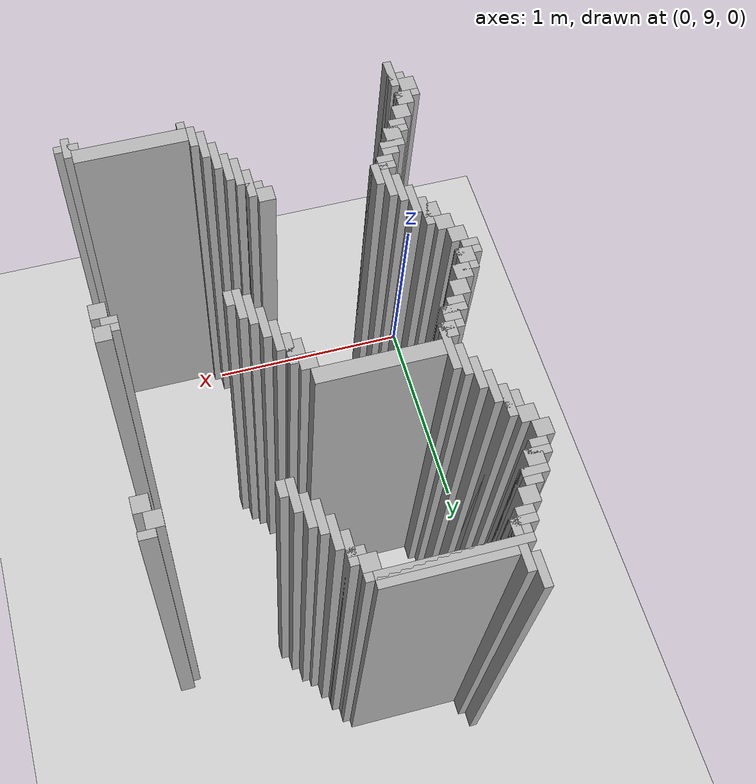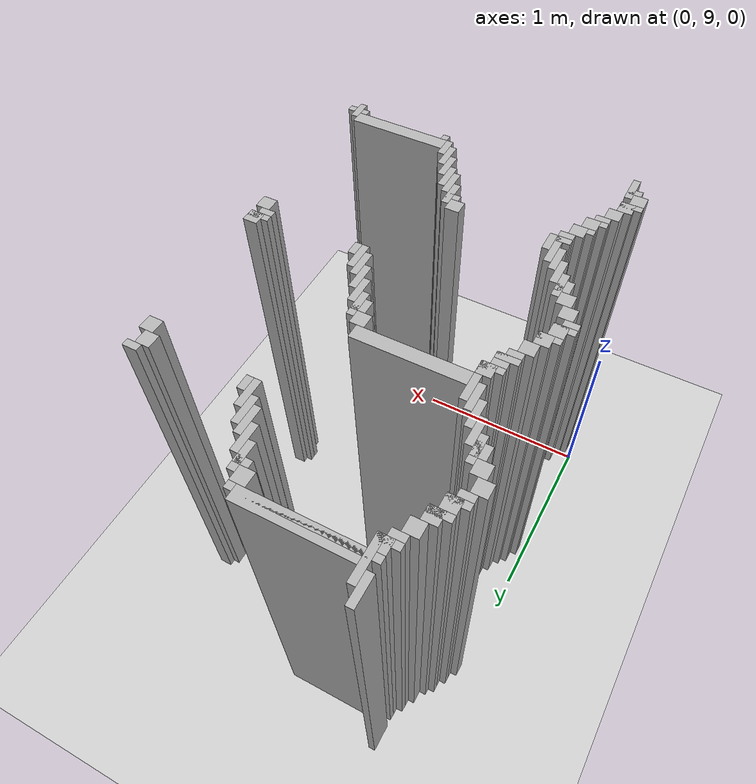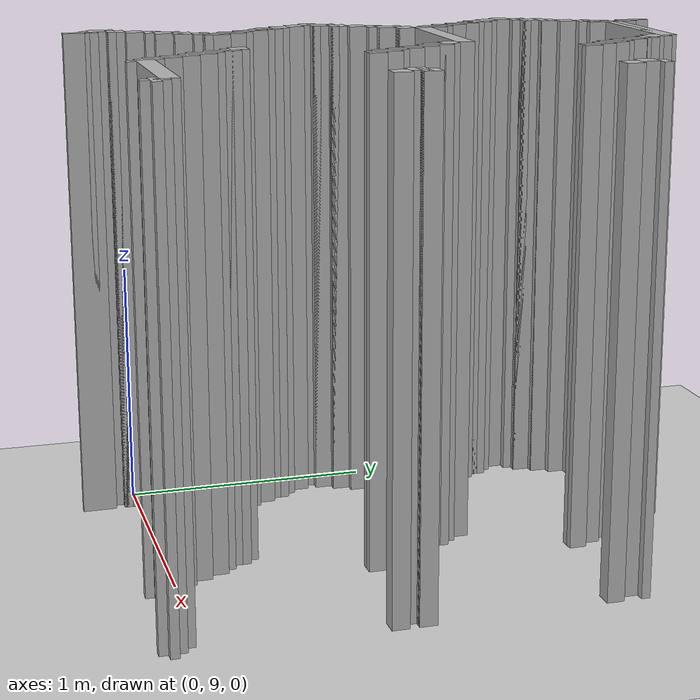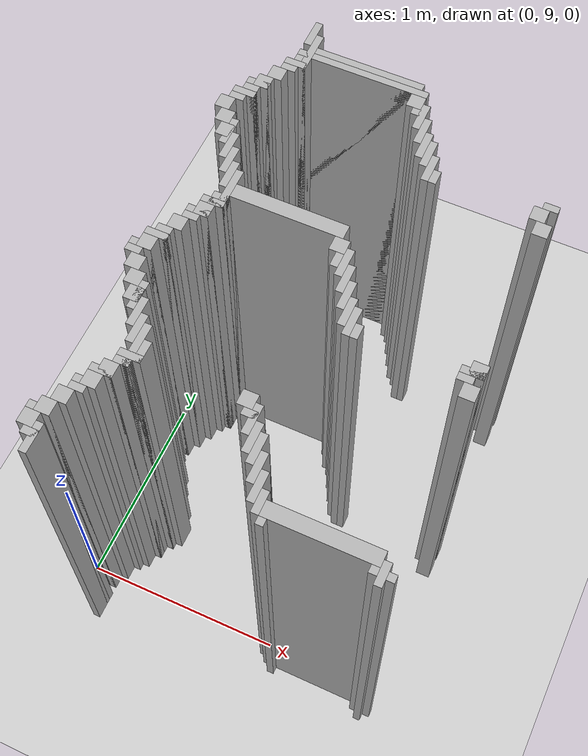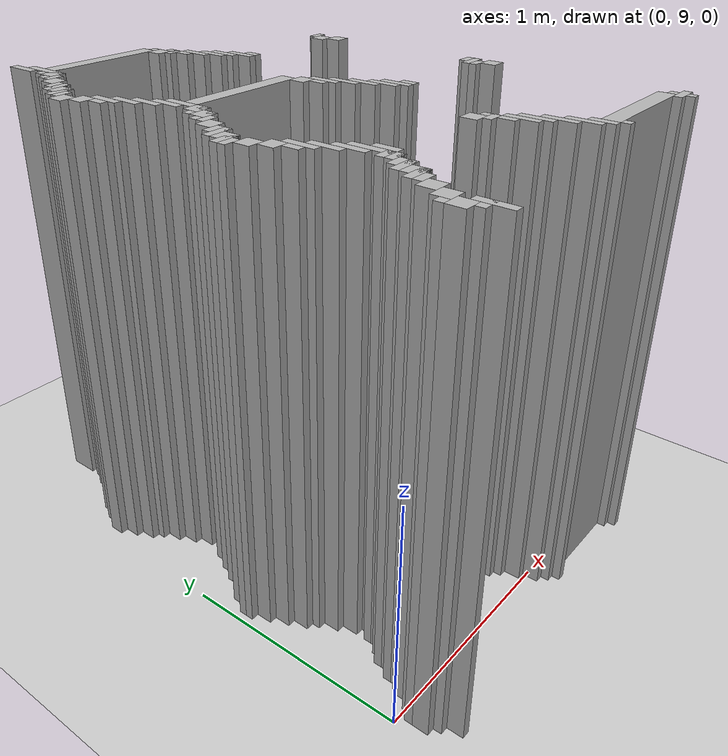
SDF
<sdf version="1.6">
 <world name="slam_world">
  <model name="ground_plane">
   <static>true</static>
   <link name="link">
    <collision name="collision">
     <geometry><plane><normal>0 0 1</normal><size>100 100</size></plane></geometry>
    </collision>
    <visual name="visual">
     <geometry><plane><normal>0 0 1</normal><size>100 100</size></plane></geometry>
     <material>
      <ambient>0.8 0.8 0.8 1</ambient>
      <diffuse>0.8 0.8 0.8 1</diffuse>
      <specular>0.8 0.8 0.8 1</specular>
     </material>
    </visual>
   </link>
  </model>
  <model name="wall_2126">
   <static>true</static>
   <pose>0.2610208816705336 11.1368909512761 1.0 0 0 0</pose>
   <link name="link">
    <collision name="collision">
     <geometry><box><size>0.03480278422273782 0.13921113689095127 2.0</size></box></geometry>
    </collision>
    <visual name="visual">
     <geometry><box><size>0.03480278422273782 0.13921113689095127 2.0</size></box></geometry>
     <material><ambient>0.5 0.5 0.5 1</ambient><diffuse>0.7 0.7 0.7 1</diffuse></material>
    </visual>
   </link>
  </model>
  <model name="wall_2150">
   <static>true</static>
   <pose>0.29582366589327147 11.032482598607888 1.0 0 0 0</pose>
   <link name="link">
    <collision name="collision">
     <geometry><box><size>0.03480278422273782 0.2088167053364269 2.0</size></box></geometry>
    </collision>
    <visual name="visual">
     <geometry><box><size>0.03480278422273782 0.2088167053364269 2.0</size></box></geometry>
     <material><ambient>0.5 0.5 0.5 1</ambient><diffuse>0.7 0.7 0.7 1</diffuse></material>
    </visual>
   </link>
  </model>
  <model name="wall_2174">
   <static>true</static>
   <pose>0.574245939675174 11.032482598607888 1.0 0 0 0</pose>
   <link name="link">
    <collision name="collision">
     <geometry><box><size>0.5220417633410672 0.06960556844547564 2.0</size></box></geometry>
    </collision>
    <visual name="visual">
     <geometry><box><size>0.5220417633410672 0.06960556844547564 2.0</size></box></geometry>
     <material><ambient>0.5 0.5 0.5 1</ambient><diffuse>0.7 0.7 0.7 1</diffuse></material>
    </visual>
   </link>
  </model>
  <model name="wall_2186">
   <static>true</static>
   <pose>0.5568445475638051 11.01508120649652 1.0 0 0 0</pose>
   <link name="link">
    <collision name="collision">
     <geometry><box><size>0.6264501160092807 0.03480278422273782 2.0</size></box></geometry>
    </collision>
    <visual name="visual">
     <geometry><box><size>0.6264501160092807 0.03480278422273782 2.0</size></box></geometry>
     <material><ambient>0.5 0.5 0.5 1</ambient><diffuse>0.7 0.7 0.7 1</diffuse></material>
    </visual>
   </link>
  </model>
  <model name="wall_2197">
   <static>true</static>
   <pose>0.27842227378190254 10.962877030162412 1.0 0 0 0</pose>
   <link name="link">
    <collision name="collision">
     <geometry><box><size>0.06960556844547564 0.06960556844547564 2.0</size></box></geometry>
    </collision>
    <visual name="visual">
     <geometry><box><size>0.06960556844547564 0.06960556844547564 2.0</size></box></geometry>
     <material><ambient>0.5 0.5 0.5 1</ambient><diffuse>0.7 0.7 0.7 1</diffuse></material>
    </visual>
   </link>
  </model>
  <model name="wall_2198">
   <static>true</static>
   <pose>0.8352668213457076 10.962877030162412 1.0 0 0 0</pose>
   <link name="link">
    <collision name="collision">
     <geometry><box><size>0.06960556844547564 0.06960556844547564 2.0</size></box></geometry>
    </collision>
    <visual name="visual">
     <geometry><box><size>0.06960556844547564 0.06960556844547564 2.0</size></box></geometry>
     <material><ambient>0.5 0.5 0.5 1</ambient><diffuse>0.7 0.7 0.7 1</diffuse></material>
    </visual>
   </link>
  </model>
  <model name="wall_2209">
   <static>true</static>
   <pose>0.2610208816705336 10.945475638051043 1.0 0 0 0</pose>
   <link name="link">
    <collision name="collision">
     <geometry><box><size>0.10440835266821345 0.03480278422273782 2.0</size></box></geometry>
    </collision>
    <visual name="visual">
     <geometry><box><size>0.10440835266821345 0.03480278422273782 2.0</size></box></geometry>
     <material><ambient>0.5 0.5 0.5 1</ambient><diffuse>0.7 0.7 0.7 1</diffuse></material>
    </visual>
   </link>
  </model>
  <model name="wall_2210">
   <static>true</static>
   <pose>0.8874709976798143 10.893271461716937 1.0 0 0 0</pose>
   <link name="link">
    <collision name="collision">
     <geometry><box><size>0.03480278422273782 0.13921113689095127 2.0</size></box></geometry>
    </collision>
    <visual name="visual">
     <geometry><box><size>0.03480278422273782 0.13921113689095127 2.0</size></box></geometry>
     <material><ambient>0.5 0.5 0.5 1</ambient><diffuse>0.7 0.7 0.7 1</diffuse></material>
    </visual>
   </link>
  </model>
  <model name="wall_2221">
   <static>true</static>
   <pose>0.24361948955916474 10.910672853828306 1.0 0 0 0</pose>
   <link name="link">
    <collision name="collision">
     <geometry><box><size>0.06960556844547564 0.03480278422273782 2.0</size></box></geometry>
    </collision>
    <visual name="visual">
     <geometry><box><size>0.06960556844547564 0.03480278422273782 2.0</size></box></geometry>
     <material><ambient>0.5 0.5 0.5 1</ambient><diffuse>0.7 0.7 0.7 1</diffuse></material>
    </visual>
   </link>
  </model>
  <model name="wall_2222">
   <static>true</static>
   <pose>0.8700696055684455 10.910672853828306 1.0 0 0 0</pose>
   <link name="link">
    <collision name="collision">
     <geometry><box><size>0.06960556844547564 0.03480278422273782 2.0</size></box></geometry>
    </collision>
    <visual name="visual">
     <geometry><box><size>0.06960556844547564 0.03480278422273782 2.0</size></box></geometry>
     <material><ambient>0.5 0.5 0.5 1</ambient><diffuse>0.7 0.7 0.7 1</diffuse></material>
    </visual>
   </link>
  </model>
  <model name="wall_2228">
   <static>true</static>
   <pose>0.2088167053364269 10.8584686774942 1.0 0 0 0</pose>
   <link name="link">
    <collision name="collision">
     <geometry><box><size>0.06960556844547564 0.06960556844547564 2.0</size></box></geometry>
    </collision>
    <visual name="visual">
     <geometry><box><size>0.06960556844547564 0.06960556844547564 2.0</size></box></geometry>
     <material><ambient>0.5 0.5 0.5 1</ambient><diffuse>0.7 0.7 0.7 1</diffuse></material>
    </visual>
   </link>
  </model>
  <model name="wall_2229">
   <static>true</static>
   <pose>0.9222737819025522 10.82366589327146 1.0 0 0 0</pose>
   <link name="link">
    <collision name="collision">
     <geometry><box><size>0.03480278422273782 0.13921113689095127 2.0</size></box></geometry>
    </collision>
    <visual name="visual">
     <geometry><box><size>0.03480278422273782 0.13921113689095127 2.0</size></box></geometry>
     <material><ambient>0.5 0.5 0.5 1</ambient><diffuse>0.7 0.7 0.7 1</diffuse></material>
    </visual>
   </link>
  </model>
  <model name="wall_2240">
   <static>true</static>
   <pose>0.17401392111368907 10.788863109048723 1.0 0 0 0</pose>
   <link name="link">
    <collision name="collision">
     <geometry><box><size>0.06960556844547564 0.06960556844547564 2.0</size></box></geometry>
    </collision>
    <visual name="visual">
     <geometry><box><size>0.06960556844547564 0.06960556844547564 2.0</size></box></geometry>
     <material><ambient>0.5 0.5 0.5 1</ambient><diffuse>0.7 0.7 0.7 1</diffuse></material>
    </visual>
   </link>
  </model>
  <model name="wall_2241">
   <static>true</static>
   <pose>0.95707656612529 10.754060324825986 1.0 0 0 0</pose>
   <link name="link">
    <collision name="collision">
     <geometry><box><size>0.03480278422273782 0.13921113689095127 2.0</size></box></geometry>
    </collision>
    <visual name="visual">
     <geometry><box><size>0.03480278422273782 0.13921113689095127 2.0</size></box></geometry>
     <material><ambient>0.5 0.5 0.5 1</ambient><diffuse>0.7 0.7 0.7 1</diffuse></material>
    </visual>
   </link>
  </model>
  <model name="wall_2252">
   <static>true</static>
   <pose>0.15661252900232017 10.771461716937354 1.0 0 0 0</pose>
   <link name="link">
    <collision name="collision">
     <geometry><box><size>0.10440835266821345 0.03480278422273782 2.0</size></box></geometry>
    </collision>
    <visual name="visual">
     <geometry><box><size>0.10440835266821345 0.03480278422273782 2.0</size></box></geometry>
     <material><ambient>0.5 0.5 0.5 1</ambient><diffuse>0.7 0.7 0.7 1</diffuse></material>
    </visual>
   </link>
  </model>
  <model name="wall_2253">
   <static>true</static>
   <pose>0.9918793503480278 10.719257540603248 1.0 0 0 0</pose>
   <link name="link">
    <collision name="collision">
     <geometry><box><size>0.03480278422273782 0.13921113689095127 2.0</size></box></geometry>
    </collision>
    <visual name="visual">
     <geometry><box><size>0.03480278422273782 0.13921113689095127 2.0</size></box></geometry>
     <material><ambient>0.5 0.5 0.5 1</ambient><diffuse>0.7 0.7 0.7 1</diffuse></material>
    </visual>
   </link>
  </model>
  <model name="wall_2264">
   <static>true</static>
   <pose>0.13921113689095127 10.719257540603248 1.0 0 0 0</pose>
   <link name="link">
    <collision name="collision">
     <geometry><box><size>0.06960556844547564 0.06960556844547564 2.0</size></box></geometry>
    </collision>
    <visual name="visual">
     <geometry><box><size>0.06960556844547564 0.06960556844547564 2.0</size></box></geometry>
     <material><ambient>0.5 0.5 0.5 1</ambient><diffuse>0.7 0.7 0.7 1</diffuse></material>
    </visual>
   </link>
  </model>
  <model name="wall_2270">
   <static>true</static>
   <pose>0.12180974477958237 10.70185614849188 1.0 0 0 0</pose>
   <link name="link">
    <collision name="collision">
     <geometry><box><size>0.10440835266821345 0.03480278422273782 2.0</size></box></geometry>
    </collision>
    <visual name="visual">
     <geometry><box><size>0.10440835266821345 0.03480278422273782 2.0</size></box></geometry>
     <material><ambient>0.5 0.5 0.5 1</ambient><diffuse>0.7 0.7 0.7 1</diffuse></material>
    </visual>
   </link>
  </model>
  <model name="wall_2271">
   <static>true</static>
   <pose>1.0266821345707655 10.649651972157772 1.0 0 0 0</pose>
   <link name="link">
    <collision name="collision">
     <geometry><box><size>0.03480278422273782 0.13921113689095127 2.0</size></box></geometry>
    </collision>
    <visual name="visual">
     <geometry><box><size>0.03480278422273782 0.13921113689095127 2.0</size></box></geometry>
     <material><ambient>0.5 0.5 0.5 1</ambient><diffuse>0.7 0.7 0.7 1</diffuse></material>
    </visual>
   </link>
  </model>
  <model name="wall_2282">
   <static>true</static>
   <pose>0.10440835266821345 10.66705336426914 1.0 0 0 0</pose>
   <link name="link">
    <collision name="collision">
     <geometry><box><size>0.06960556844547564 0.03480278422273782 2.0</size></box></geometry>
    </collision>
    <visual name="visual">
     <geometry><box><size>0.06960556844547564 0.03480278422273782 2.0</size></box></geometry>
     <material><ambient>0.5 0.5 0.5 1</ambient><diffuse>0.7 0.7 0.7 1</diffuse></material>
    </visual>
   </link>
  </model>
  <model name="wall_2283">
   <static>true</static>
   <pose>1.5661252900232019 10.66705336426914 1.0 0 0 0</pose>
   <link name="link">
    <collision name="collision">
     <geometry><box><size>0.06960556844547564 0.03480278422273782 2.0</size></box></geometry>
    </collision>
    <visual name="visual">
     <geometry><box><size>0.06960556844547564 0.03480278422273782 2.0</size></box></geometry>
     <material><ambient>0.5 0.5 0.5 1</ambient><diffuse>0.7 0.7 0.7 1</diffuse></material>
    </visual>
   </link>
  </model>
  <model name="wall_2288">
   <static>true</static>
   <pose>0.06960556844547564 10.614849187935034 1.0 0 0 0</pose>
   <link name="link">
    <collision name="collision">
     <geometry><box><size>0.06960556844547564 0.06960556844547564 2.0</size></box></geometry>
    </collision>
    <visual name="visual">
     <geometry><box><size>0.06960556844547564 0.06960556844547564 2.0</size></box></geometry>
     <material><ambient>0.5 0.5 0.5 1</ambient><diffuse>0.7 0.7 0.7 1</diffuse></material>
    </visual>
   </link>
  </model>
  <model name="wall_2289">
   <static>true</static>
   <pose>1.0614849187935034 10.614849187935034 1.0 0 0 0</pose>
   <link name="link">
    <collision name="collision">
     <geometry><box><size>0.03480278422273782 0.06960556844547564 2.0</size></box></geometry>
    </collision>
    <visual name="visual">
     <geometry><box><size>0.03480278422273782 0.06960556844547564 2.0</size></box></geometry>
     <material><ambient>0.5 0.5 0.5 1</ambient><diffuse>0.7 0.7 0.7 1</diffuse></material>
    </visual>
   </link>
  </model>
  <model name="wall_2290">
   <static>true</static>
   <pose>1.531322505800464 10.614849187935034 1.0 0 0 0</pose>
   <link name="link">
    <collision name="collision">
     <geometry><box><size>0.06960556844547564 0.06960556844547564 2.0</size></box></geometry>
    </collision>
    <visual name="visual">
     <geometry><box><size>0.06960556844547564 0.06960556844547564 2.0</size></box></geometry>
     <material><ambient>0.5 0.5 0.5 1</ambient><diffuse>0.7 0.7 0.7 1</diffuse></material>
    </visual>
   </link>
  </model>
  <model name="wall_2301">
   <static>true</static>
   <pose>0.10440835266821345 10.54524361948956 1.0 0 0 0</pose>
   <link name="link">
    <collision name="collision">
     <geometry><box><size>0.06960556844547564 0.06960556844547564 2.0</size></box></geometry>
    </collision>
    <visual name="visual">
     <geometry><box><size>0.06960556844547564 0.06960556844547564 2.0</size></box></geometry>
     <material><ambient>0.5 0.5 0.5 1</ambient><diffuse>0.7 0.7 0.7 1</diffuse></material>
    </visual>
   </link>
  </model>
  <model name="wall_2302">
   <static>true</static>
   <pose>1.5661252900232019 10.54524361948956 1.0 0 0 0</pose>
   <link name="link">
    <collision name="collision">
     <geometry><box><size>0.06960556844547564 0.06960556844547564 2.0</size></box></geometry>
    </collision>
    <visual name="visual">
     <geometry><box><size>0.06960556844547564 0.06960556844547564 2.0</size></box></geometry>
     <material><ambient>0.5 0.5 0.5 1</ambient><diffuse>0.7 0.7 0.7 1</diffuse></material>
    </visual>
   </link>
  </model>
  <model name="wall_2312">
   <static>true</static>
   <pose>0.15661252900232017 10.475638051044083 1.0 0 0 0</pose>
   <link name="link">
    <collision name="collision">
     <geometry><box><size>0.03480278422273782 0.13921113689095127 2.0</size></box></geometry>
    </collision>
    <visual name="visual">
     <geometry><box><size>0.03480278422273782 0.13921113689095127 2.0</size></box></geometry>
     <material><ambient>0.5 0.5 0.5 1</ambient><diffuse>0.7 0.7 0.7 1</diffuse></material>
    </visual>
   </link>
  </model>
  <model name="wall_2323">
   <static>true</static>
   <pose>0.13921113689095127 10.475638051044083 1.0 0 0 0</pose>
   <link name="link">
    <collision name="collision">
     <geometry><box><size>0.06960556844547564 0.06960556844547564 2.0</size></box></geometry>
    </collision>
    <visual name="visual">
     <geometry><box><size>0.06960556844547564 0.06960556844547564 2.0</size></box></geometry>
     <material><ambient>0.5 0.5 0.5 1</ambient><diffuse>0.7 0.7 0.7 1</diffuse></material>
    </visual>
   </link>
  </model>
  <model name="wall_2334">
   <static>true</static>
   <pose>0.191415313225058 10.406032482598608 1.0 0 0 0</pose>
   <link name="link">
    <collision name="collision">
     <geometry><box><size>0.03480278422273782 0.13921113689095127 2.0</size></box></geometry>
    </collision>
    <visual name="visual">
     <geometry><box><size>0.03480278422273782 0.13921113689095127 2.0</size></box></geometry>
     <material><ambient>0.5 0.5 0.5 1</ambient><diffuse>0.7 0.7 0.7 1</diffuse></material>
    </visual>
   </link>
  </model>
  <model name="wall_2350">
   <static>true</static>
   <pose>0.2262180974477958 10.336426914153131 1.0 0 0 0</pose>
   <link name="link">
    <collision name="collision">
     <geometry><box><size>0.03480278422273782 0.13921113689095127 2.0</size></box></geometry>
    </collision>
    <visual name="visual">
     <geometry><box><size>0.03480278422273782 0.13921113689095127 2.0</size></box></geometry>
     <material><ambient>0.5 0.5 0.5 1</ambient><diffuse>0.7 0.7 0.7 1</diffuse></material>
    </visual>
   </link>
  </model>
  <model name="wall_2361">
   <static>true</static>
   <pose>0.2610208816705336 10.266821345707656 1.0 0 0 0</pose>
   <link name="link">
    <collision name="collision">
     <geometry><box><size>0.03480278422273782 0.13921113689095127 2.0</size></box></geometry>
    </collision>
    <visual name="visual">
     <geometry><box><size>0.03480278422273782 0.13921113689095127 2.0</size></box></geometry>
     <material><ambient>0.5 0.5 0.5 1</ambient><diffuse>0.7 0.7 0.7 1</diffuse></material>
    </visual>
   </link>
  </model>
  <model name="wall_2372">
   <static>true</static>
   <pose>0.29582366589327147 10.19721577726218 1.0 0 0 0</pose>
   <link name="link">
    <collision name="collision">
     <geometry><box><size>0.03480278422273782 0.2088167053364269 2.0</size></box></geometry>
    </collision>
    <visual name="visual">
     <geometry><box><size>0.03480278422273782 0.2088167053364269 2.0</size></box></geometry>
     <material><ambient>0.5 0.5 0.5 1</ambient><diffuse>0.7 0.7 0.7 1</diffuse></material>
    </visual>
   </link>
  </model>
  <model name="wall_2388">
   <static>true</static>
   <pose>0.574245939675174 10.19721577726218 1.0 0 0 0</pose>
   <link name="link">
    <collision name="collision">
     <geometry><box><size>0.5220417633410672 0.06960556844547564 2.0</size></box></geometry>
    </collision>
    <visual name="visual">
     <geometry><box><size>0.5220417633410672 0.06960556844547564 2.0</size></box></geometry>
     <material><ambient>0.5 0.5 0.5 1</ambient><diffuse>0.7 0.7 0.7 1</diffuse></material>
    </visual>
   </link>
  </model>
  <model name="wall_2405">
   <static>true</static>
   <pose>0.27842227378190254 10.127610208816705 1.0 0 0 0</pose>
   <link name="link">
    <collision name="collision">
     <geometry><box><size>0.06960556844547564 0.06960556844547564 2.0</size></box></geometry>
    </collision>
    <visual name="visual">
     <geometry><box><size>0.06960556844547564 0.06960556844547564 2.0</size></box></geometry>
     <material><ambient>0.5 0.5 0.5 1</ambient><diffuse>0.7 0.7 0.7 1</diffuse></material>
    </visual>
   </link>
  </model>
  <model name="wall_2406">
   <static>true</static>
   <pose>0.8352668213457076 10.127610208816705 1.0 0 0 0</pose>
   <link name="link">
    <collision name="collision">
     <geometry><box><size>0.06960556844547564 0.06960556844547564 2.0</size></box></geometry>
    </collision>
    <visual name="visual">
     <geometry><box><size>0.06960556844547564 0.06960556844547564 2.0</size></box></geometry>
     <material><ambient>0.5 0.5 0.5 1</ambient><diffuse>0.7 0.7 0.7 1</diffuse></material>
    </visual>
   </link>
  </model>
  <model name="wall_2419">
   <static>true</static>
   <pose>0.2610208816705336 10.110208816705336 1.0 0 0 0</pose>
   <link name="link">
    <collision name="collision">
     <geometry><box><size>0.10440835266821345 0.03480278422273782 2.0</size></box></geometry>
    </collision>
    <visual name="visual">
     <geometry><box><size>0.10440835266821345 0.03480278422273782 2.0</size></box></geometry>
     <material><ambient>0.5 0.5 0.5 1</ambient><diffuse>0.7 0.7 0.7 1</diffuse></material>
    </visual>
   </link>
  </model>
  <model name="wall_2420">
   <static>true</static>
   <pose>0.8874709976798143 10.058004640371228 1.0 0 0 0</pose>
   <link name="link">
    <collision name="collision">
     <geometry><box><size>0.03480278422273782 0.13921113689095127 2.0</size></box></geometry>
    </collision>
    <visual name="visual">
     <geometry><box><size>0.03480278422273782 0.13921113689095127 2.0</size></box></geometry>
     <material><ambient>0.5 0.5 0.5 1</ambient><diffuse>0.7 0.7 0.7 1</diffuse></material>
    </visual>
   </link>
  </model>
  <model name="wall_2433">
   <static>true</static>
   <pose>0.24361948955916474 10.058004640371228 1.0 0 0 0</pose>
   <link name="link">
    <collision name="collision">
     <geometry><box><size>0.06960556844547564 0.06960556844547564 2.0</size></box></geometry>
    </collision>
    <visual name="visual">
     <geometry><box><size>0.06960556844547564 0.06960556844547564 2.0</size></box></geometry>
     <material><ambient>0.5 0.5 0.5 1</ambient><diffuse>0.7 0.7 0.7 1</diffuse></material>
    </visual>
   </link>
  </model>
  <model name="wall_2434">
   <static>true</static>
   <pose>0.8700696055684455 10.058004640371228 1.0 0 0 0</pose>
   <link name="link">
    <collision name="collision">
     <geometry><box><size>0.06960556844547564 0.06960556844547564 2.0</size></box></geometry>
    </collision>
    <visual name="visual">
     <geometry><box><size>0.06960556844547564 0.06960556844547564 2.0</size></box></geometry>
     <material><ambient>0.5 0.5 0.5 1</ambient><diffuse>0.7 0.7 0.7 1</diffuse></material>
    </visual>
   </link>
  </model>
  <model name="wall_2447">
   <static>true</static>
   <pose>0.2262180974477958 10.04060324825986 1.0 0 0 0</pose>
   <link name="link">
    <collision name="collision">
     <geometry><box><size>0.10440835266821345 0.03480278422273782 2.0</size></box></geometry>
    </collision>
    <visual name="visual">
     <geometry><box><size>0.10440835266821345 0.03480278422273782 2.0</size></box></geometry>
     <material><ambient>0.5 0.5 0.5 1</ambient><diffuse>0.7 0.7 0.7 1</diffuse></material>
    </visual>
   </link>
  </model>
  <model name="wall_2448">
   <static>true</static>
   <pose>0.9222737819025522 9.988399071925754 1.0 0 0 0</pose>
   <link name="link">
    <collision name="collision">
     <geometry><box><size>0.03480278422273782 0.13921113689095127 2.0</size></box></geometry>
    </collision>
    <visual name="visual">
     <geometry><box><size>0.03480278422273782 0.13921113689095127 2.0</size></box></geometry>
     <material><ambient>0.5 0.5 0.5 1</ambient><diffuse>0.7 0.7 0.7 1</diffuse></material>
    </visual>
   </link>
  </model>
  <model name="wall_2461">
   <static>true</static>
   <pose>0.2088167053364269 10.005800464037122 1.0 0 0 0</pose>
   <link name="link">
    <collision name="collision">
     <geometry><box><size>0.06960556844547564 0.03480278422273782 2.0</size></box></geometry>
    </collision>
    <visual name="visual">
     <geometry><box><size>0.06960556844547564 0.03480278422273782 2.0</size></box></geometry>
     <material><ambient>0.5 0.5 0.5 1</ambient><diffuse>0.7 0.7 0.7 1</diffuse></material>
    </visual>
   </link>
  </model>
  <model name="wall_2469">
   <static>true</static>
   <pose>0.17401392111368907 9.953596287703016 1.0 0 0 0</pose>
   <link name="link">
    <collision name="collision">
     <geometry><box><size>0.06960556844547564 0.06960556844547564 2.0</size></box></geometry>
    </collision>
    <visual name="visual">
     <geometry><box><size>0.06960556844547564 0.06960556844547564 2.0</size></box></geometry>
     <material><ambient>0.5 0.5 0.5 1</ambient><diffuse>0.7 0.7 0.7 1</diffuse></material>
    </visual>
   </link>
  </model>
  <model name="wall_2470">
   <static>true</static>
   <pose>0.95707656612529 9.918793503480279 1.0 0 0 0</pose>
   <link name="link">
    <collision name="collision">
     <geometry><box><size>0.03480278422273782 0.13921113689095127 2.0</size></box></geometry>
    </collision>
    <visual name="visual">
     <geometry><box><size>0.03480278422273782 0.13921113689095127 2.0</size></box></geometry>
     <material><ambient>0.5 0.5 0.5 1</ambient><diffuse>0.7 0.7 0.7 1</diffuse></material>
    </visual>
   </link>
  </model>
  <model name="wall_2483">
   <static>true</static>
   <pose>0.13921113689095127 9.88399071925754 1.0 0 0 0</pose>
   <link name="link">
    <collision name="collision">
     <geometry><box><size>0.06960556844547564 0.06960556844547564 2.0</size></box></geometry>
    </collision>
    <visual name="visual">
     <geometry><box><size>0.06960556844547564 0.06960556844547564 2.0</size></box></geometry>
     <material><ambient>0.5 0.5 0.5 1</ambient><diffuse>0.7 0.7 0.7 1</diffuse></material>
    </visual>
   </link>
  </model>
  <model name="wall_2484">
   <static>true</static>
   <pose>0.9918793503480278 9.849187935034802 1.0 0 0 0</pose>
   <link name="link">
    <collision name="collision">
     <geometry><box><size>0.03480278422273782 0.13921113689095127 2.0</size></box></geometry>
    </collision>
    <visual name="visual">
     <geometry><box><size>0.03480278422273782 0.13921113689095127 2.0</size></box></geometry>
     <material><ambient>0.5 0.5 0.5 1</ambient><diffuse>0.7 0.7 0.7 1</diffuse></material>
    </visual>
   </link>
  </model>
  <model name="wall_2497">
   <static>true</static>
   <pose>0.12180974477958237 9.86658932714617 1.0 0 0 0</pose>
   <link name="link">
    <collision name="collision">
     <geometry><box><size>0.10440835266821345 0.03480278422273782 2.0</size></box></geometry>
    </collision>
    <visual name="visual">
     <geometry><box><size>0.10440835266821345 0.03480278422273782 2.0</size></box></geometry>
     <material><ambient>0.5 0.5 0.5 1</ambient><diffuse>0.7 0.7 0.7 1</diffuse></material>
    </visual>
   </link>
  </model>
  <model name="wall_2498">
   <static>true</static>
   <pose>1.0266821345707655 9.814385150812065 1.0 0 0 0</pose>
   <link name="link">
    <collision name="collision">
     <geometry><box><size>0.03480278422273782 0.13921113689095127 2.0</size></box></geometry>
    </collision>
    <visual name="visual">
     <geometry><box><size>0.03480278422273782 0.13921113689095127 2.0</size></box></geometry>
     <material><ambient>0.5 0.5 0.5 1</ambient><diffuse>0.7 0.7 0.7 1</diffuse></material>
    </visual>
   </link>
  </model>
  <model name="wall_2511">
   <static>true</static>
   <pose>0.10440835266821345 9.814385150812065 1.0 0 0 0</pose>
   <link name="link">
    <collision name="collision">
     <geometry><box><size>0.06960556844547564 0.06960556844547564 2.0</size></box></geometry>
    </collision>
    <visual name="visual">
     <geometry><box><size>0.06960556844547564 0.06960556844547564 2.0</size></box></geometry>
     <material><ambient>0.5 0.5 0.5 1</ambient><diffuse>0.7 0.7 0.7 1</diffuse></material>
    </visual>
   </link>
  </model>
  <model name="wall_2512">
   <static>true</static>
   <pose>1.5661252900232019 9.814385150812065 1.0 0 0 0</pose>
   <link name="link">
    <collision name="collision">
     <geometry><box><size>0.06960556844547564 0.06960556844547564 2.0</size></box></geometry>
    </collision>
    <visual name="visual">
     <geometry><box><size>0.06960556844547564 0.06960556844547564 2.0</size></box></geometry>
     <material><ambient>0.5 0.5 0.5 1</ambient><diffuse>0.7 0.7 0.7 1</diffuse></material>
    </visual>
   </link>
  </model>
  <model name="wall_2519">
   <static>true</static>
   <pose>0.08700696055684454 9.796983758700696 1.0 0 0 0</pose>
   <link name="link">
    <collision name="collision">
     <geometry><box><size>0.10440835266821345 0.03480278422273782 2.0</size></box></geometry>
    </collision>
    <visual name="visual">
     <geometry><box><size>0.10440835266821345 0.03480278422273782 2.0</size></box></geometry>
     <material><ambient>0.5 0.5 0.5 1</ambient><diffuse>0.7 0.7 0.7 1</diffuse></material>
    </visual>
   </link>
  </model>
  <model name="wall_2520">
   <static>true</static>
   <pose>1.0614849187935034 9.779582366589327 1.0 0 0 0</pose>
   <link name="link">
    <collision name="collision">
     <geometry><box><size>0.03480278422273782 0.06960556844547564 2.0</size></box></geometry>
    </collision>
    <visual name="visual">
     <geometry><box><size>0.03480278422273782 0.06960556844547564 2.0</size></box></geometry>
     <material><ambient>0.5 0.5 0.5 1</ambient><diffuse>0.7 0.7 0.7 1</diffuse></material>
    </visual>
   </link>
  </model>
  <model name="wall_2521">
   <static>true</static>
   <pose>1.548723897911833 9.796983758700696 1.0 0 0 0</pose>
   <link name="link">
    <collision name="collision">
     <geometry><box><size>0.10440835266821345 0.03480278422273782 2.0</size></box></geometry>
    </collision>
    <visual name="visual">
     <geometry><box><size>0.10440835266821345 0.03480278422273782 2.0</size></box></geometry>
     <material><ambient>0.5 0.5 0.5 1</ambient><diffuse>0.7 0.7 0.7 1</diffuse></material>
    </visual>
   </link>
  </model>
  <model name="wall_2533">
   <static>true</static>
   <pose>0.06960556844547564 9.762180974477959 1.0 0 0 0</pose>
   <link name="link">
    <collision name="collision">
     <geometry><box><size>0.06960556844547564 0.03480278422273782 2.0</size></box></geometry>
    </collision>
    <visual name="visual">
     <geometry><box><size>0.06960556844547564 0.03480278422273782 2.0</size></box></geometry>
     <material><ambient>0.5 0.5 0.5 1</ambient><diffuse>0.7 0.7 0.7 1</diffuse></material>
    </visual>
   </link>
  </model>
  <model name="wall_2534">
   <static>true</static>
   <pose>1.531322505800464 9.762180974477959 1.0 0 0 0</pose>
   <link name="link">
    <collision name="collision">
     <geometry><box><size>0.06960556844547564 0.03480278422273782 2.0</size></box></geometry>
    </collision>
    <visual name="visual">
     <geometry><box><size>0.06960556844547564 0.03480278422273782 2.0</size></box></geometry>
     <material><ambient>0.5 0.5 0.5 1</ambient><diffuse>0.7 0.7 0.7 1</diffuse></material>
    </visual>
   </link>
  </model>
  <model name="wall_2541">
   <static>true</static>
   <pose>0.10440835266821345 9.70997679814385 1.0 0 0 0</pose>
   <link name="link">
    <collision name="collision">
     <geometry><box><size>0.06960556844547564 0.06960556844547564 2.0</size></box></geometry>
    </collision>
    <visual name="visual">
     <geometry><box><size>0.06960556844547564 0.06960556844547564 2.0</size></box></geometry>
     <material><ambient>0.5 0.5 0.5 1</ambient><diffuse>0.7 0.7 0.7 1</diffuse></material>
    </visual>
   </link>
  </model>
  <model name="wall_2542">
   <static>true</static>
   <pose>1.5661252900232019 9.70997679814385 1.0 0 0 0</pose>
   <link name="link">
    <collision name="collision">
     <geometry><box><size>0.06960556844547564 0.06960556844547564 2.0</size></box></geometry>
    </collision>
    <visual name="visual">
     <geometry><box><size>0.06960556844547564 0.06960556844547564 2.0</size></box></geometry>
     <material><ambient>0.5 0.5 0.5 1</ambient><diffuse>0.7 0.7 0.7 1</diffuse></material>
    </visual>
   </link>
  </model>
  <model name="wall_2558">
   <static>true</static>
   <pose>0.13921113689095127 9.640371229698376 1.0 0 0 0</pose>
   <link name="link">
    <collision name="collision">
     <geometry><box><size>0.06960556844547564 0.06960556844547564 2.0</size></box></geometry>
    </collision>
    <visual name="visual">
     <geometry><box><size>0.06960556844547564 0.06960556844547564 2.0</size></box></geometry>
     <material><ambient>0.5 0.5 0.5 1</ambient><diffuse>0.7 0.7 0.7 1</diffuse></material>
    </visual>
   </link>
  </model>
  <model name="wall_2569">
   <static>true</static>
   <pose>0.191415313225058 9.5707656612529 1.0 0 0 0</pose>
   <link name="link">
    <collision name="collision">
     <geometry><box><size>0.03480278422273782 0.13921113689095127 2.0</size></box></geometry>
    </collision>
    <visual name="visual">
     <geometry><box><size>0.03480278422273782 0.13921113689095127 2.0</size></box></geometry>
     <material><ambient>0.5 0.5 0.5 1</ambient><diffuse>0.7 0.7 0.7 1</diffuse></material>
    </visual>
   </link>
  </model>
  <model name="wall_2580">
   <static>true</static>
   <pose>0.17401392111368907 9.5707656612529 1.0 0 0 0</pose>
   <link name="link">
    <collision name="collision">
     <geometry><box><size>0.06960556844547564 0.06960556844547564 2.0</size></box></geometry>
    </collision>
    <visual name="visual">
     <geometry><box><size>0.06960556844547564 0.06960556844547564 2.0</size></box></geometry>
     <material><ambient>0.5 0.5 0.5 1</ambient><diffuse>0.7 0.7 0.7 1</diffuse></material>
    </visual>
   </link>
  </model>
  <model name="wall_2591">
   <static>true</static>
   <pose>0.2262180974477958 9.501160092807424 1.0 0 0 0</pose>
   <link name="link">
    <collision name="collision">
     <geometry><box><size>0.03480278422273782 0.13921113689095127 2.0</size></box></geometry>
    </collision>
    <visual name="visual">
     <geometry><box><size>0.03480278422273782 0.13921113689095127 2.0</size></box></geometry>
     <material><ambient>0.5 0.5 0.5 1</ambient><diffuse>0.7 0.7 0.7 1</diffuse></material>
    </visual>
   </link>
  </model>
  <model name="wall_2606">
   <static>true</static>
   <pose>0.2610208816705336 9.431554524361948 1.0 0 0 0</pose>
   <link name="link">
    <collision name="collision">
     <geometry><box><size>0.03480278422273782 0.13921113689095127 2.0</size></box></geometry>
    </collision>
    <visual name="visual">
     <geometry><box><size>0.03480278422273782 0.13921113689095127 2.0</size></box></geometry>
     <material><ambient>0.5 0.5 0.5 1</ambient><diffuse>0.7 0.7 0.7 1</diffuse></material>
    </visual>
   </link>
  </model>
  <model name="wall_2617">
   <static>true</static>
   <pose>0.29582366589327147 9.361948955916473 1.0 0 0 0</pose>
   <link name="link">
    <collision name="collision">
     <geometry><box><size>0.03480278422273782 0.2088167053364269 2.0</size></box></geometry>
    </collision>
    <visual name="visual">
     <geometry><box><size>0.03480278422273782 0.2088167053364269 2.0</size></box></geometry>
     <material><ambient>0.5 0.5 0.5 1</ambient><diffuse>0.7 0.7 0.7 1</diffuse></material>
    </visual>
   </link>
  </model>
  <model name="wall_2632">
   <static>true</static>
   <pose>0.3306264501160093 9.344547563805104 1.0 0 0 0</pose>
   <link name="link">
    <collision name="collision">
     <geometry><box><size>0.03480278422273782 0.10440835266821345 2.0</size></box></geometry>
    </collision>
    <visual name="visual">
     <geometry><box><size>0.03480278422273782 0.10440835266821345 2.0</size></box></geometry>
     <material><ambient>0.5 0.5 0.5 1</ambient><diffuse>0.7 0.7 0.7 1</diffuse></material>
    </visual>
   </link>
  </model>
  <model name="wall_2643">
   <static>true</static>
   <pose>0.8004640371229698 9.327146171693736 1.0 0 0 0</pose>
   <link name="link">
    <collision name="collision">
     <geometry><box><size>0.06960556844547564 0.06960556844547564 2.0</size></box></geometry>
    </collision>
    <visual name="visual">
     <geometry><box><size>0.06960556844547564 0.06960556844547564 2.0</size></box></geometry>
     <material><ambient>0.5 0.5 0.5 1</ambient><diffuse>0.7 0.7 0.7 1</diffuse></material>
    </visual>
   </link>
  </model>
  <model name="wall_2653">
   <static>true</static>
   <pose>0.29582366589327147 9.309744779582367 1.0 0 0 0</pose>
   <link name="link">
    <collision name="collision">
     <geometry><box><size>0.10440835266821345 0.03480278422273782 2.0</size></box></geometry>
    </collision>
    <visual name="visual">
     <geometry><box><size>0.10440835266821345 0.03480278422273782 2.0</size></box></geometry>
     <material><ambient>0.5 0.5 0.5 1</ambient><diffuse>0.7 0.7 0.7 1</diffuse></material>
    </visual>
   </link>
  </model>
  <model name="wall_2654">
   <static>true</static>
   <pose>0.8526682134570766 9.257540603248259 1.0 0 0 0</pose>
   <link name="link">
    <collision name="collision">
     <geometry><box><size>0.03480278422273782 0.13921113689095127 2.0</size></box></geometry>
    </collision>
    <visual name="visual">
     <geometry><box><size>0.03480278422273782 0.13921113689095127 2.0</size></box></geometry>
     <material><ambient>0.5 0.5 0.5 1</ambient><diffuse>0.7 0.7 0.7 1</diffuse></material>
    </visual>
   </link>
  </model>
  <model name="wall_2672">
   <static>true</static>
   <pose>0.27842227378190254 9.274941995359628 1.0 0 0 0</pose>
   <link name="link">
    <collision name="collision">
     <geometry><box><size>0.06960556844547564 0.03480278422273782 2.0</size></box></geometry>
    </collision>
    <visual name="visual">
     <geometry><box><size>0.06960556844547564 0.03480278422273782 2.0</size></box></geometry>
     <material><ambient>0.5 0.5 0.5 1</ambient><diffuse>0.7 0.7 0.7 1</diffuse></material>
    </visual>
   </link>
  </model>
  <model name="wall_2673">
   <static>true</static>
   <pose>0.8352668213457076 9.274941995359628 1.0 0 0 0</pose>
   <link name="link">
    <collision name="collision">
     <geometry><box><size>0.06960556844547564 0.03480278422273782 2.0</size></box></geometry>
    </collision>
    <visual name="visual">
     <geometry><box><size>0.06960556844547564 0.03480278422273782 2.0</size></box></geometry>
     <material><ambient>0.5 0.5 0.5 1</ambient><diffuse>0.7 0.7 0.7 1</diffuse></material>
    </visual>
   </link>
  </model>
  <model name="wall_2690">
   <static>true</static>
   <pose>0.24361948955916474 9.222737819025522 1.0 0 0 0</pose>
   <link name="link">
    <collision name="collision">
     <geometry><box><size>0.06960556844547564 0.06960556844547564 2.0</size></box></geometry>
    </collision>
    <visual name="visual">
     <geometry><box><size>0.06960556844547564 0.06960556844547564 2.0</size></box></geometry>
     <material><ambient>0.5 0.5 0.5 1</ambient><diffuse>0.7 0.7 0.7 1</diffuse></material>
    </visual>
   </link>
  </model>
  <model name="wall_2691">
   <static>true</static>
   <pose>0.8874709976798143 9.187935034802784 1.0 0 0 0</pose>
   <link name="link">
    <collision name="collision">
     <geometry><box><size>0.03480278422273782 0.13921113689095127 2.0</size></box></geometry>
    </collision>
    <visual name="visual">
     <geometry><box><size>0.03480278422273782 0.13921113689095127 2.0</size></box></geometry>
     <material><ambient>0.5 0.5 0.5 1</ambient><diffuse>0.7 0.7 0.7 1</diffuse></material>
    </visual>
   </link>
  </model>
  <model name="wall_2709">
   <static>true</static>
   <pose>0.2262180974477958 9.205336426914153 1.0 0 0 0</pose>
   <link name="link">
    <collision name="collision">
     <geometry><box><size>0.10440835266821345 0.03480278422273782 2.0</size></box></geometry>
    </collision>
    <visual name="visual">
     <geometry><box><size>0.10440835266821345 0.03480278422273782 2.0</size></box></geometry>
     <material><ambient>0.5 0.5 0.5 1</ambient><diffuse>0.7 0.7 0.7 1</diffuse></material>
    </visual>
   </link>
  </model>
  <model name="wall_2710">
   <static>true</static>
   <pose>0.9222737819025522 9.153132250580047 1.0 0 0 0</pose>
   <link name="link">
    <collision name="collision">
     <geometry><box><size>0.03480278422273782 0.13921113689095127 2.0</size></box></geometry>
    </collision>
    <visual name="visual">
     <geometry><box><size>0.03480278422273782 0.13921113689095127 2.0</size></box></geometry>
     <material><ambient>0.5 0.5 0.5 1</ambient><diffuse>0.7 0.7 0.7 1</diffuse></material>
    </visual>
   </link>
  </model>
  <model name="wall_2728">
   <static>true</static>
   <pose>0.2088167053364269 9.153132250580047 1.0 0 0 0</pose>
   <link name="link">
    <collision name="collision">
     <geometry><box><size>0.06960556844547564 0.06960556844547564 2.0</size></box></geometry>
    </collision>
    <visual name="visual">
     <geometry><box><size>0.06960556844547564 0.06960556844547564 2.0</size></box></geometry>
     <material><ambient>0.5 0.5 0.5 1</ambient><diffuse>0.7 0.7 0.7 1</diffuse></material>
    </visual>
   </link>
  </model>
  <model name="wall_2743">
   <static>true</static>
   <pose>0.191415313225058 9.135730858468676 1.0 0 0 0</pose>
   <link name="link">
    <collision name="collision">
     <geometry><box><size>0.10440835266821345 0.03480278422273782 2.0</size></box></geometry>
    </collision>
    <visual name="visual">
     <geometry><box><size>0.10440835266821345 0.03480278422273782 2.0</size></box></geometry>
     <material><ambient>0.5 0.5 0.5 1</ambient><diffuse>0.7 0.7 0.7 1</diffuse></material>
    </visual>
   </link>
  </model>
  <model name="wall_2744">
   <static>true</static>
   <pose>0.95707656612529 9.08352668213457 1.0 0 0 0</pose>
   <link name="link">
    <collision name="collision">
     <geometry><box><size>0.03480278422273782 0.13921113689095127 2.0</size></box></geometry>
    </collision>
    <visual name="visual">
     <geometry><box><size>0.03480278422273782 0.13921113689095127 2.0</size></box></geometry>
     <material><ambient>0.5 0.5 0.5 1</ambient><diffuse>0.7 0.7 0.7 1</diffuse></material>
    </visual>
   </link>
  </model>
  <model name="wall_2762">
   <static>true</static>
   <pose>0.17401392111368907 9.100928074245939 1.0 0 0 0</pose>
   <link name="link">
    <collision name="collision">
     <geometry><box><size>0.06960556844547564 0.03480278422273782 2.0</size></box></geometry>
    </collision>
    <visual name="visual">
     <geometry><box><size>0.06960556844547564 0.03480278422273782 2.0</size></box></geometry>
     <material><ambient>0.5 0.5 0.5 1</ambient><diffuse>0.7 0.7 0.7 1</diffuse></material>
    </visual>
   </link>
  </model>
  <model name="wall_2772">
   <static>true</static>
   <pose>0.13921113689095127 9.048723897911833 1.0 0 0 0</pose>
   <link name="link">
    <collision name="collision">
     <geometry><box><size>0.06960556844547564 0.06960556844547564 2.0</size></box></geometry>
    </collision>
    <visual name="visual">
     <geometry><box><size>0.06960556844547564 0.06960556844547564 2.0</size></box></geometry>
     <material><ambient>0.5 0.5 0.5 1</ambient><diffuse>0.7 0.7 0.7 1</diffuse></material>
    </visual>
   </link>
  </model>
  <model name="wall_2773">
   <static>true</static>
   <pose>0.9918793503480278 9.013921113689095 1.0 0 0 0</pose>
   <link name="link">
    <collision name="collision">
     <geometry><box><size>0.03480278422273782 0.13921113689095127 2.0</size></box></geometry>
    </collision>
    <visual name="visual">
     <geometry><box><size>0.03480278422273782 0.13921113689095127 2.0</size></box></geometry>
     <material><ambient>0.5 0.5 0.5 1</ambient><diffuse>0.7 0.7 0.7 1</diffuse></material>
    </visual>
   </link>
  </model>
  <model name="wall_2791">
   <static>true</static>
   <pose>0.10440835266821345 8.979118329466356 1.0 0 0 0</pose>
   <link name="link">
    <collision name="collision">
     <geometry><box><size>0.06960556844547564 0.06960556844547564 2.0</size></box></geometry>
    </collision>
    <visual name="visual">
     <geometry><box><size>0.06960556844547564 0.06960556844547564 2.0</size></box></geometry>
     <material><ambient>0.5 0.5 0.5 1</ambient><diffuse>0.7 0.7 0.7 1</diffuse></material>
    </visual>
   </link>
  </model>
  <model name="wall_2792">
   <static>true</static>
   <pose>1.0266821345707655 8.961716937354987 1.0 0 0 0</pose>
   <link name="link">
    <collision name="collision">
     <geometry><box><size>0.03480278422273782 0.10440835266821345 2.0</size></box></geometry>
    </collision>
    <visual name="visual">
     <geometry><box><size>0.03480278422273782 0.10440835266821345 2.0</size></box></geometry>
     <material><ambient>0.5 0.5 0.5 1</ambient><diffuse>0.7 0.7 0.7 1</diffuse></material>
    </visual>
   </link>
  </model>
  <model name="wall_2810">
   <static>true</static>
   <pose>0.08700696055684454 8.961716937354987 1.0 0 0 0</pose>
   <link name="link">
    <collision name="collision">
     <geometry><box><size>0.10440835266821345 0.03480278422273782 2.0</size></box></geometry>
    </collision>
    <visual name="visual">
     <geometry><box><size>0.10440835266821345 0.03480278422273782 2.0</size></box></geometry>
     <material><ambient>0.5 0.5 0.5 1</ambient><diffuse>0.7 0.7 0.7 1</diffuse></material>
    </visual>
   </link>
  </model>
  <model name="wall_2811">
   <static>true</static>
   <pose>1.2877030162412992 8.944315545243619 1.0 0 0 0</pose>
   <link name="link">
    <collision name="collision">
     <geometry><box><size>0.4872389791183295 0.06960556844547564 2.0</size></box></geometry>
    </collision>
    <visual name="visual">
     <geometry><box><size>0.4872389791183295 0.06960556844547564 2.0</size></box></geometry>
     <material><ambient>0.5 0.5 0.5 1</ambient><diffuse>0.7 0.7 0.7 1</diffuse></material>
    </visual>
   </link>
  </model>
  <model name="wall_2826">
   <static>true</static>
   <pose>0.06960556844547564 8.909512761020881 1.0 0 0 0</pose>
   <link name="link">
    <collision name="collision">
     <geometry><box><size>0.06960556844547564 0.06960556844547564 2.0</size></box></geometry>
    </collision>
    <visual name="visual">
     <geometry><box><size>0.06960556844547564 0.06960556844547564 2.0</size></box></geometry>
     <material><ambient>0.5 0.5 0.5 1</ambient><diffuse>0.7 0.7 0.7 1</diffuse></material>
    </visual>
   </link>
  </model>
  <model name="wall_2827">
   <static>true</static>
   <pose>1.548723897911833 8.892111368909513 1.0 0 0 0</pose>
   <link name="link">
    <collision name="collision">
     <geometry><box><size>0.03480278422273782 0.10440835266821345 2.0</size></box></geometry>
    </collision>
    <visual name="visual">
     <geometry><box><size>0.03480278422273782 0.10440835266821345 2.0</size></box></geometry>
     <material><ambient>0.5 0.5 0.5 1</ambient><diffuse>0.7 0.7 0.7 1</diffuse></material>
    </visual>
   </link>
  </model>
  <model name="wall_2837">
   <static>true</static>
   <pose>0.12180974477958237 8.839907192575406 1.0 0 0 0</pose>
   <link name="link">
    <collision name="collision">
     <geometry><box><size>0.03480278422273782 0.13921113689095127 2.0</size></box></geometry>
    </collision>
    <visual name="visual">
     <geometry><box><size>0.03480278422273782 0.13921113689095127 2.0</size></box></geometry>
     <material><ambient>0.5 0.5 0.5 1</ambient><diffuse>0.7 0.7 0.7 1</diffuse></material>
    </visual>
   </link>
  </model>
  <model name="wall_2838">
   <static>true</static>
   <pose>1.0614849187935034 8.892111368909513 1.0 0 0 0</pose>
   <link name="link">
    <collision name="collision">
     <geometry><box><size>0.03480278422273782 0.03480278422273782 2.0</size></box></geometry>
    </collision>
    <visual name="visual">
     <geometry><box><size>0.03480278422273782 0.03480278422273782 2.0</size></box></geometry>
     <material><ambient>0.5 0.5 0.5 1</ambient><diffuse>0.7 0.7 0.7 1</diffuse></material>
    </visual>
   </link>
  </model>
  <model name="wall_2839">
   <static>true</static>
   <pose>1.548723897911833 8.892111368909513 1.0 0 0 0</pose>
   <link name="link">
    <collision name="collision">
     <geometry><box><size>0.10440835266821345 0.03480278422273782 2.0</size></box></geometry>
    </collision>
    <visual name="visual">
     <geometry><box><size>0.10440835266821345 0.03480278422273782 2.0</size></box></geometry>
     <material><ambient>0.5 0.5 0.5 1</ambient><diffuse>0.7 0.7 0.7 1</diffuse></material>
    </visual>
   </link>
  </model>
  <model name="wall_2854">
   <static>true</static>
   <pose>0.10440835266821345 8.857308584686775 1.0 0 0 0</pose>
   <link name="link">
    <collision name="collision">
     <geometry><box><size>0.06960556844547564 0.03480278422273782 2.0</size></box></geometry>
    </collision>
    <visual name="visual">
     <geometry><box><size>0.06960556844547564 0.03480278422273782 2.0</size></box></geometry>
     <material><ambient>0.5 0.5 0.5 1</ambient><diffuse>0.7 0.7 0.7 1</diffuse></material>
    </visual>
   </link>
  </model>
 </world>
</sdf>
